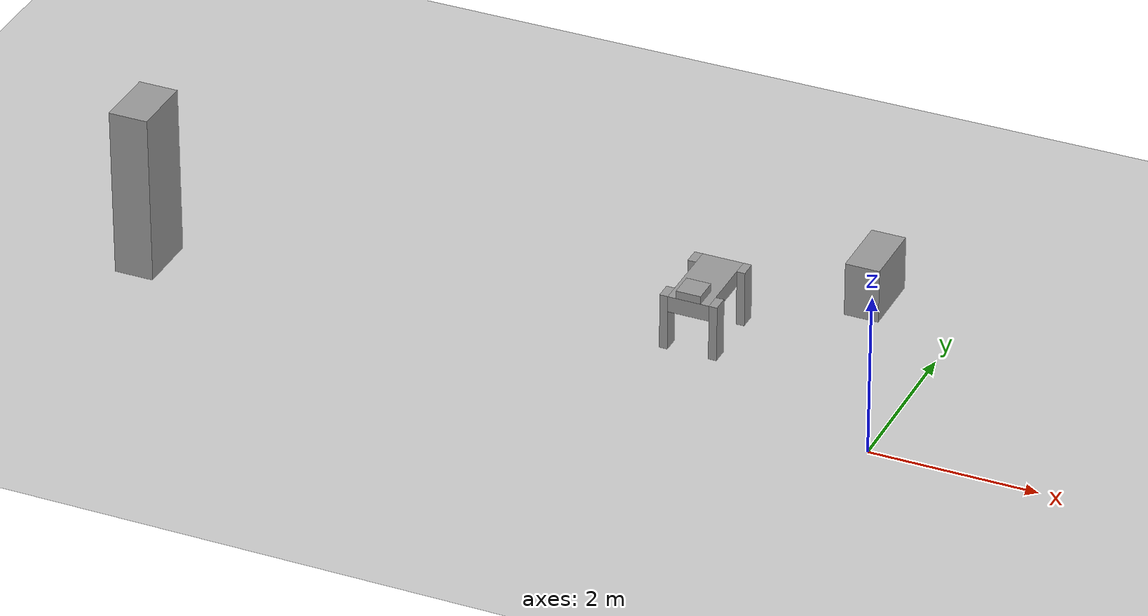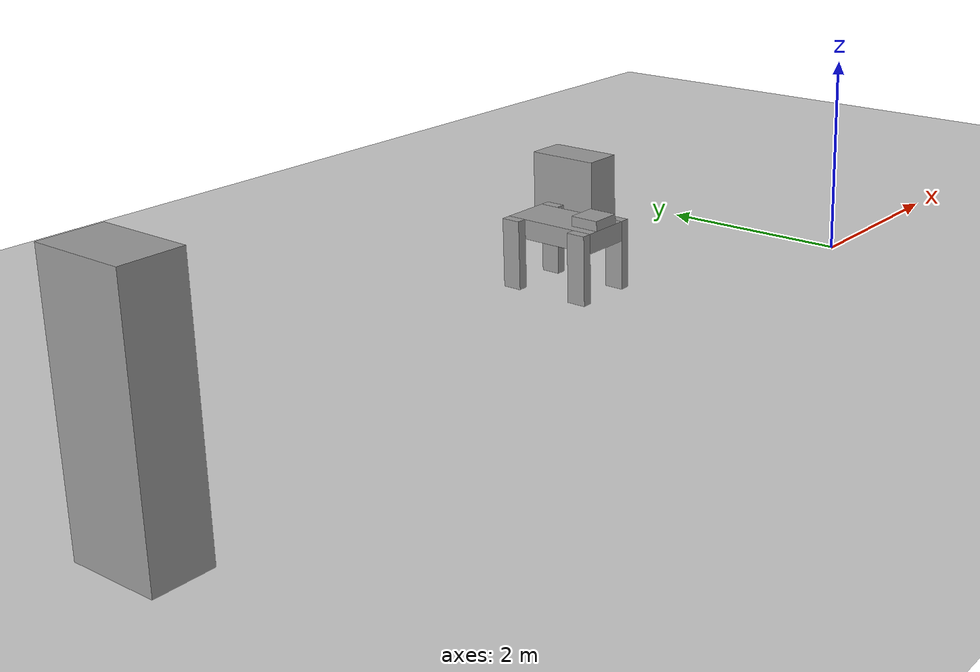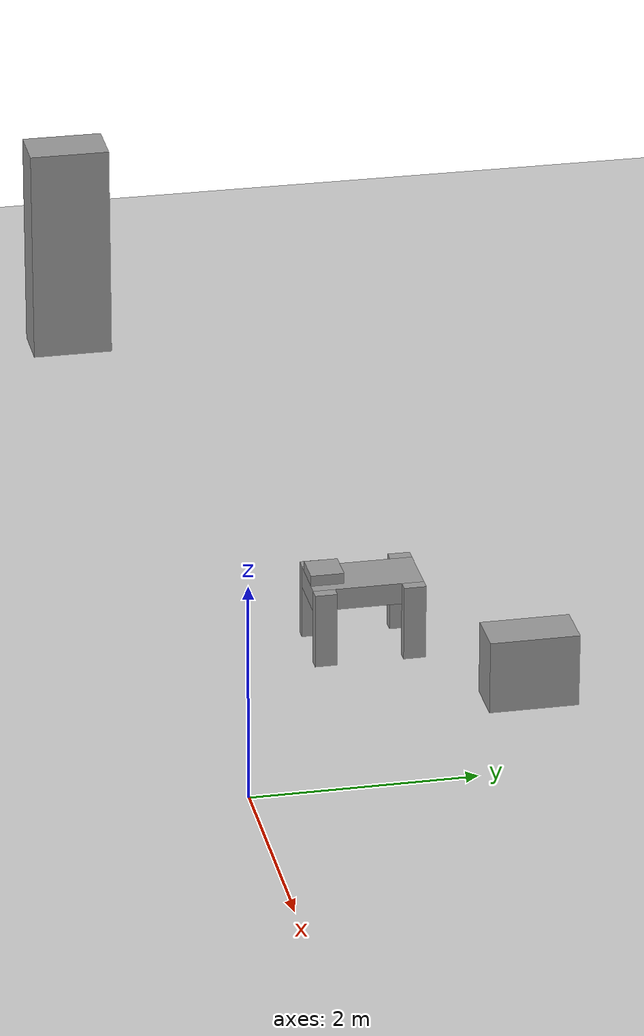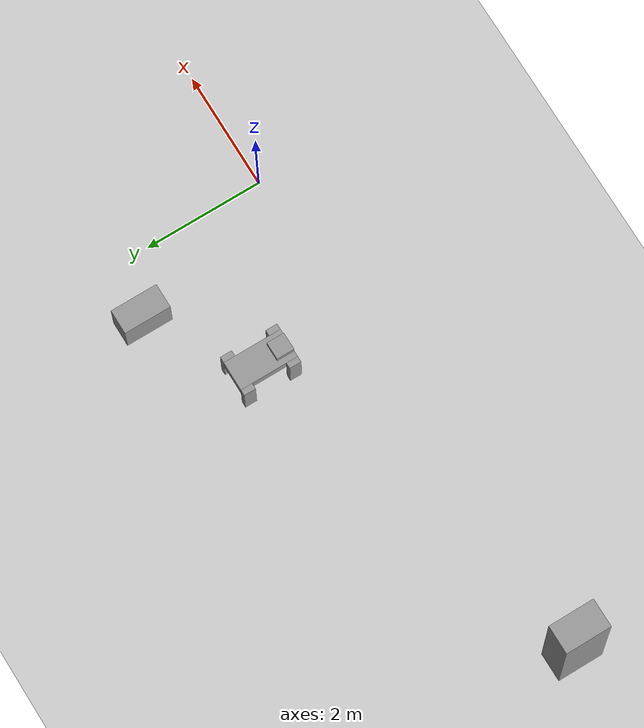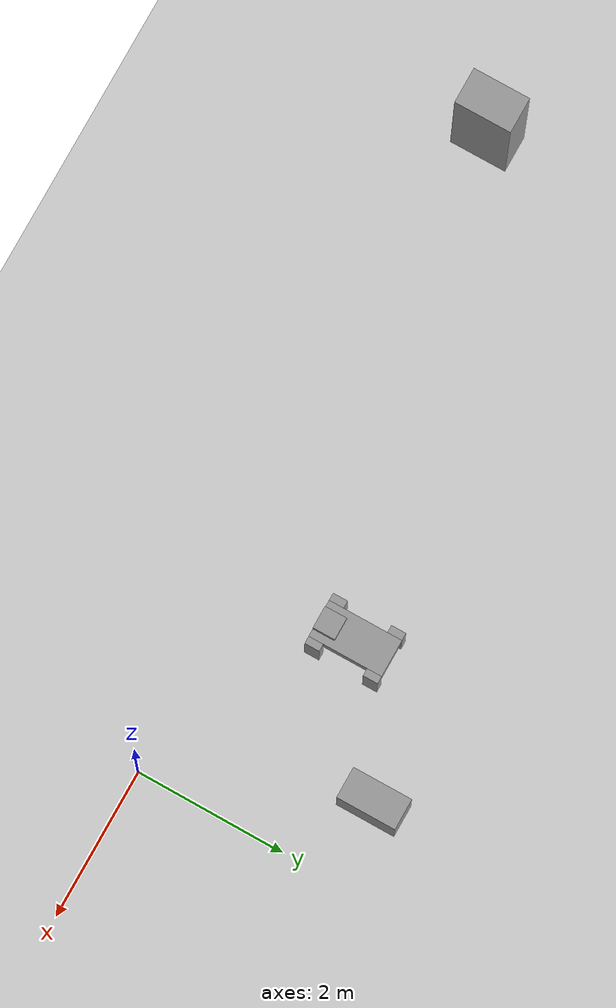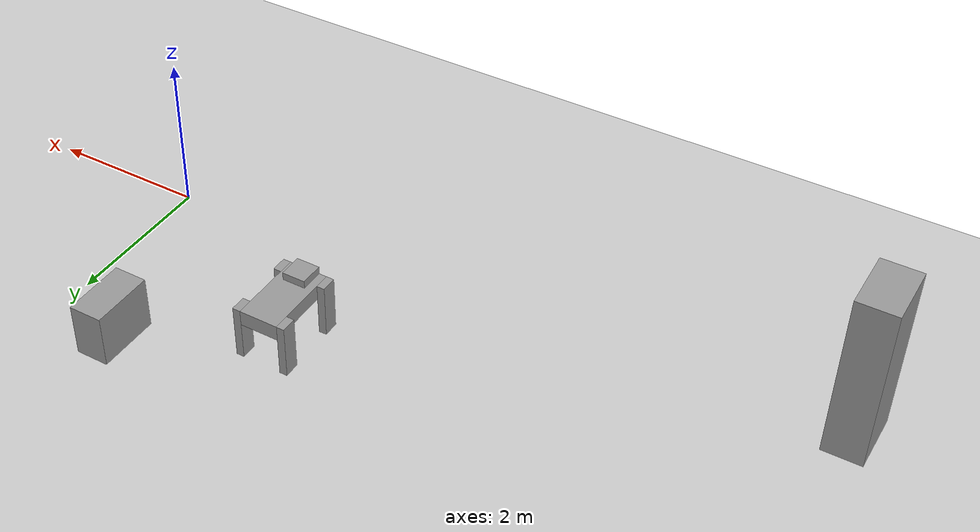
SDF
<sdf version="1.7">
 <world name="default">
  <model name="ground_plane">
   <static>1</static>
   <link name="link">
    <collision name="collision">
     <geometry><plane><normal>0 0 1</normal><size>100 100</size></plane></geometry>
     <surface>
      <contact><collide_bitmask>65535</collide_bitmask></contact>
      <friction><ode><mu>100</mu><mu2>50</mu2></ode></friction>
     </surface>
    </collision>
    <visual name="visual">
     <cast_shadows>0</cast_shadows>
     <geometry><plane><normal>0 0 1</normal><size>100 100</size></plane></geometry>
     <material>
      <script><uri>file://media/materials/scripts/gazebo.material</uri><name>Gazebo/Grey</name></script>
     </material>
    </visual>
   </link>
  </model>
  <model name="robot">
   <link name="link_1_clone">
    <inertial>
     <mass>1</mass>
     <inertia>
      <ixx>0.166667</ixx>
      <ixy>0</ixy>
      <ixz>0</ixz>
      <iyy>0.166667</iyy>
      <iyz>0</iyz>
      <izz>0.166667</izz>
     </inertia>
    </inertial>
    <pose>1e-06 0.058332 0.141667 0 -0 0</pose>
    <visual name="visual">
     <geometry><box><size>0.5 1 0.2</size></box></geometry>
     <material>
      <lighting>1</lighting>
      <script><uri>file://media/materials/scripts/gazebo.material</uri><name>Gazebo/Grey</name></script>
      <shader type="pixel"><normal_map>__default__</normal_map></shader>
      <ambient>0.3 0.3 0.3 1</ambient>
      <diffuse>0.7 0.7 0.7 1</diffuse>
      <specular>0.01 0.01 0.01 1</specular>
      <emissive>0 0 0 1</emissive>
     </material>
    </visual>
    <collision name="collision">
     <geometry><box><size>0.5 1 0.2</size></box></geometry>
     <surface>
      <friction>
       <ode><mu>1</mu><mu2>1</mu2><fdir1>0 0 0</fdir1><slip1>0</slip1><slip2>0</slip2></ode>
       <torsional>
        <coefficient>1</coefficient>
        <patch_radius>0</patch_radius>
        <surface_radius>0</surface_radius>
        <use_patch_radius>1</use_patch_radius>
        <ode><slip>0</slip></ode>
       </torsional>
      </friction>
      <bounce><restitution_coefficient>0</restitution_coefficient><threshold>1e+06</threshold></bounce>
      <contact>
       <collide_without_contact>0</collide_without_contact>
       <collide_without_contact_bitmask>1</collide_without_contact_bitmask>
       <collide_bitmask>1</collide_bitmask>
       <ode>
        <soft_cfm>0</soft_cfm>
        <soft_erp>0.2</soft_erp>
        <kp>1e+13</kp>
        <kd>1</kd>
        <max_vel>0.01</max_vel>
        <min_depth>0</min_depth>
       </ode>
       <bullet>
        <split_impulse>1</split_impulse>
        <split_impulse_penetration_threshold>-0.01</split_impulse_penetration_threshold>
        <soft_cfm>0</soft_cfm>
        <soft_erp>0.2</soft_erp>
        <kp>1e+13</kp>
        <kd>1</kd>
       </bullet>
      </contact>
     </surface>
    </collision>
   </link>
   <link name="link_3_clone">
    <inertial>
     <mass>1</mass>
     <inertia>
      <ixx>0.166667</ixx>
      <ixy>0</ixy>
      <ixz>0</ixz>
      <iyy>0.166667</iyy>
      <iyz>0</iyz>
      <izz>0.166667</izz>
     </inertia>
    </inertial>
    <pose>0.300001 0.458331 -0.108333 0 -0 0</pose>
    <visual name="visual">
     <geometry><box><size>0.1 0.2 0.7</size></box></geometry>
     <material>
      <lighting>1</lighting>
      <script><uri>file://media/materials/scripts/gazebo.material</uri><name>Gazebo/Grey</name></script>
      <shader type="pixel"><normal_map>__default__</normal_map></shader>
      <ambient>0.3 0.3 0.3 1</ambient>
      <diffuse>0.7 0.7 0.7 1</diffuse>
      <specular>0.01 0.01 0.01 1</specular>
      <emissive>0 0 0 1</emissive>
     </material>
    </visual>
    <collision name="collision">
     <geometry><box><size>0.1 0.2 0.7</size></box></geometry>
     <surface>
      <friction>
       <ode><mu>1</mu><mu2>1</mu2><fdir1>0 0 0</fdir1><slip1>0</slip1><slip2>0</slip2></ode>
       <torsional>
        <coefficient>1</coefficient>
        <patch_radius>0</patch_radius>
        <surface_radius>0</surface_radius>
        <use_patch_radius>1</use_patch_radius>
        <ode><slip>0</slip></ode>
       </torsional>
      </friction>
      <bounce><restitution_coefficient>0</restitution_coefficient><threshold>1e+06</threshold></bounce>
      <contact>
       <collide_without_contact>0</collide_without_contact>
       <collide_without_contact_bitmask>1</collide_without_contact_bitmask>
       <collide_bitmask>1</collide_bitmask>
       <ode>
        <soft_cfm>0</soft_cfm>
        <soft_erp>0.2</soft_erp>
        <kp>1e+13</kp>
        <kd>1</kd>
        <max_vel>0.01</max_vel>
        <min_depth>0</min_depth>
       </ode>
       <bullet>
        <split_impulse>1</split_impulse>
        <split_impulse_penetration_threshold>-0.01</split_impulse_penetration_threshold>
        <soft_cfm>0</soft_cfm>
        <soft_erp>0.2</soft_erp>
        <kp>1e+13</kp>
        <kd>1</kd>
       </bullet>
      </contact>
     </surface>
    </collision>
   </link>
   <link name="link_3_clone_clone">
    <inertial>
     <mass>1</mass>
     <inertia>
      <ixx>0.166667</ixx>
      <ixy>0</ixy>
      <ixz>0</ixz>
      <iyy>0.166667</iyy>
      <iyz>0</iyz>
      <izz>0.166667</izz>
     </inertia>
    </inertial>
    <pose>-0.299999 -0.341668 -0.108333 0 -0 0</pose>
    <visual name="visual">
     <geometry><box><size>0.1 0.2 0.7</size></box></geometry>
     <material>
      <lighting>1</lighting>
      <script><uri>file://media/materials/scripts/gazebo.material</uri><name>Gazebo/Grey</name></script>
      <shader type="pixel"><normal_map>__default__</normal_map></shader>
      <ambient>0.3 0.3 0.3 1</ambient>
      <diffuse>0.7 0.7 0.7 1</diffuse>
      <specular>0.01 0.01 0.01 1</specular>
      <emissive>0 0 0 1</emissive>
     </material>
    </visual>
    <collision name="collision">
     <geometry><box><size>0.1 0.2 0.7</size></box></geometry>
     <surface>
      <friction>
       <ode><mu>1</mu><mu2>1</mu2><fdir1>0 0 0</fdir1><slip1>0</slip1><slip2>0</slip2></ode>
       <torsional>
        <coefficient>1</coefficient>
        <patch_radius>0</patch_radius>
        <surface_radius>0</surface_radius>
        <use_patch_radius>1</use_patch_radius>
        <ode><slip>0</slip></ode>
       </torsional>
      </friction>
      <bounce><restitution_coefficient>0</restitution_coefficient><threshold>1e+06</threshold></bounce>
      <contact>
       <collide_without_contact>0</collide_without_contact>
       <collide_without_contact_bitmask>1</collide_without_contact_bitmask>
       <collide_bitmask>1</collide_bitmask>
       <ode>
        <soft_cfm>0</soft_cfm>
        <soft_erp>0.2</soft_erp>
        <kp>1e+13</kp>
        <kd>1</kd>
        <max_vel>0.01</max_vel>
        <min_depth>0</min_depth>
       </ode>
       <bullet>
        <split_impulse>1</split_impulse>
        <split_impulse_penetration_threshold>-0.01</split_impulse_penetration_threshold>
        <soft_cfm>0</soft_cfm>
        <soft_erp>0.2</soft_erp>
        <kp>1e+13</kp>
        <kd>1</kd>
       </bullet>
      </contact>
     </surface>
    </collision>
   </link>
   <link name="link_3_clone_clone_0">
    <inertial>
     <mass>1</mass>
     <inertia>
      <ixx>0.166667</ixx>
      <ixy>0</ixy>
      <ixz>0</ixz>
      <iyy>0.166667</iyy>
      <iyz>0</iyz>
      <izz>0.166667</izz>
     </inertia>
    </inertial>
    <pose>-0.299999 0.458331 -0.108333 0 -0 0</pose>
    <visual name="visual">
     <geometry><box><size>0.1 0.2 0.7</size></box></geometry>
     <material>
      <lighting>1</lighting>
      <script><uri>file://media/materials/scripts/gazebo.material</uri><name>Gazebo/Grey</name></script>
      <shader type="pixel"><normal_map>__default__</normal_map></shader>
      <ambient>0.3 0.3 0.3 1</ambient>
      <diffuse>0.7 0.7 0.7 1</diffuse>
      <specular>0.01 0.01 0.01 1</specular>
      <emissive>0 0 0 1</emissive>
     </material>
    </visual>
    <collision name="collision">
     <geometry><box><size>0.1 0.2 0.7</size></box></geometry>
     <surface>
      <friction>
       <ode><mu>1</mu><mu2>1</mu2><fdir1>0 0 0</fdir1><slip1>0</slip1><slip2>0</slip2></ode>
       <torsional>
        <coefficient>1</coefficient>
        <patch_radius>0</patch_radius>
        <surface_radius>0</surface_radius>
        <use_patch_radius>1</use_patch_radius>
        <ode><slip>0</slip></ode>
       </torsional>
      </friction>
      <bounce><restitution_coefficient>0</restitution_coefficient><threshold>1e+06</threshold></bounce>
      <contact>
       <collide_without_contact>0</collide_without_contact>
       <collide_without_contact_bitmask>1</collide_without_contact_bitmask>
       <collide_bitmask>1</collide_bitmask>
       <ode>
        <soft_cfm>0</soft_cfm>
        <soft_erp>0.2</soft_erp>
        <kp>1e+13</kp>
        <kd>1</kd>
        <max_vel>0.01</max_vel>
        <min_depth>0</min_depth>
       </ode>
       <bullet>
        <split_impulse>1</split_impulse>
        <split_impulse_penetration_threshold>-0.01</split_impulse_penetration_threshold>
        <soft_cfm>0</soft_cfm>
        <soft_erp>0.2</soft_erp>
        <kp>1e+13</kp>
        <kd>1</kd>
       </bullet>
      </contact>
     </surface>
    </collision>
   </link>
   <link name="link_3_clone_clone_1">
    <inertial>
     <mass>1</mass>
     <inertia>
      <ixx>0.166667</ixx>
      <ixy>0</ixy>
      <ixz>0</ixz>
      <iyy>0.166667</iyy>
      <iyz>0</iyz>
      <izz>0.166667</izz>
     </inertia>
    </inertial>
    <pose>0.300001 -0.341668 -0.108333 0 -0 0</pose>
    <visual name="visual">
     <geometry><box><size>0.1 0.2 0.7</size></box></geometry>
     <material>
      <lighting>1</lighting>
      <script><uri>file://media/materials/scripts/gazebo.material</uri><name>Gazebo/Grey</name></script>
      <shader type="pixel"><normal_map>__default__</normal_map></shader>
      <ambient>0.3 0.3 0.3 1</ambient>
      <diffuse>0.7 0.7 0.7 1</diffuse>
      <specular>0.01 0.01 0.01 1</specular>
      <emissive>0 0 0 1</emissive>
     </material>
    </visual>
    <collision name="collision">
     <geometry><box><size>0.1 0.2 0.7</size></box></geometry>
     <surface>
      <friction>
       <ode><mu>1</mu><mu2>1</mu2><fdir1>0 0 0</fdir1><slip1>0</slip1><slip2>0</slip2></ode>
       <torsional>
        <coefficient>1</coefficient>
        <patch_radius>0</patch_radius>
        <surface_radius>0</surface_radius>
        <use_patch_radius>1</use_patch_radius>
        <ode><slip>0</slip></ode>
       </torsional>
      </friction>
      <bounce><restitution_coefficient>0</restitution_coefficient><threshold>1e+06</threshold></bounce>
      <contact>
       <collide_without_contact>0</collide_without_contact>
       <collide_without_contact_bitmask>1</collide_without_contact_bitmask>
       <collide_bitmask>1</collide_bitmask>
       <ode>
        <soft_cfm>0</soft_cfm>
        <soft_erp>0.2</soft_erp>
        <kp>1e+13</kp>
        <kd>1</kd>
        <max_vel>0.01</max_vel>
        <min_depth>0</min_depth>
       </ode>
       <bullet>
        <split_impulse>1</split_impulse>
        <split_impulse_penetration_threshold>-0.01</split_impulse_penetration_threshold>
        <soft_cfm>0</soft_cfm>
        <soft_erp>0.2</soft_erp>
        <kp>1e+13</kp>
        <kd>1</kd>
       </bullet>
      </contact>
     </surface>
    </collision>
   </link>
   <link name="link_4_clone">
    <inertial>
     <mass>1</mass>
     <inertia>
      <ixx>0.166667</ixx>
      <ixy>0</ixy>
      <ixz>0</ixz>
      <iyy>0.166667</iyy>
      <iyz>0</iyz>
      <izz>0.166667</izz>
     </inertia>
    </inertial>
    <pose>1e-06 -0.291669 0.291667 0 -0 0</pose>
    <visual name="visual">
     <geometry><box><size>0.3 0.3 0.1</size></box></geometry>
     <material>
      <lighting>1</lighting>
      <script><uri>file://media/materials/scripts/gazebo.material</uri><name>Gazebo/Grey</name></script>
      <shader type="pixel"><normal_map>__default__</normal_map></shader>
      <ambient>0.3 0.3 0.3 1</ambient>
      <diffuse>0.7 0.7 0.7 1</diffuse>
      <specular>0.01 0.01 0.01 1</specular>
      <emissive>0 0 0 1</emissive>
     </material>
    </visual>
    <collision name="collision">
     <geometry><box><size>0.3 0.3 0.1</size></box></geometry>
     <surface>
      <friction>
       <ode><mu>1</mu><mu2>1</mu2><fdir1>0 0 0</fdir1><slip1>0</slip1><slip2>0</slip2></ode>
       <torsional>
        <coefficient>1</coefficient>
        <patch_radius>0</patch_radius>
        <surface_radius>0</surface_radius>
        <use_patch_radius>1</use_patch_radius>
        <ode><slip>0</slip></ode>
       </torsional>
      </friction>
      <bounce><restitution_coefficient>0</restitution_coefficient><threshold>1e+06</threshold></bounce>
      <contact>
       <collide_without_contact>0</collide_without_contact>
       <collide_without_contact_bitmask>1</collide_without_contact_bitmask>
       <collide_bitmask>1</collide_bitmask>
       <ode>
        <soft_cfm>0</soft_cfm>
        <soft_erp>0.2</soft_erp>
        <kp>1e+13</kp>
        <kd>1</kd>
        <max_vel>0.01</max_vel>
        <min_depth>0</min_depth>
       </ode>
       <bullet>
        <split_impulse>1</split_impulse>
        <split_impulse_penetration_threshold>-0.01</split_impulse_penetration_threshold>
        <soft_cfm>0</soft_cfm>
        <soft_erp>0.2</soft_erp>
        <kp>1e+13</kp>
        <kd>1</kd>
       </bullet>
      </contact>
     </surface>
    </collision>
   </link>
   <joint name="link_1_clone_JOINT_1" type="revolute">
    <parent>link_1_clone</parent>
    <child>link_3_clone_clone_1</child>
    <axis>
     <xyz>1 0 0</xyz>
     <limit>
      <lower>-1.79769e+308</lower>
      <upper>1.79769e+308</upper>
      <effort>-1</effort>
      <velocity>-1</velocity>
     </limit>
     <dynamics>
      <spring_reference>0</spring_reference>
      <spring_stiffness>0</spring_stiffness>
      <damping>0</damping>
     </dynamics>
    </axis>
    <physics>
     <ode><limit><cfm>0</cfm><erp>0.2</erp></limit><suspension><cfm>0</cfm><erp>0.2</erp></suspension></ode>
    </physics>
   </joint>
   <joint name="link_1_clone_JOINT_2" type="revolute">
    <parent>link_1_clone</parent>
    <child>link_3_clone_clone</child>
    <axis>
     <xyz>1 0 0</xyz>
     <limit>
      <lower>-1.79769e+308</lower>
      <upper>1.79769e+308</upper>
      <effort>-1</effort>
      <velocity>-1</velocity>
     </limit>
     <dynamics>
      <spring_reference>0</spring_reference>
      <spring_stiffness>0</spring_stiffness>
      <damping>0</damping>
     </dynamics>
    </axis>
    <physics>
     <ode><limit><cfm>0</cfm><erp>0.2</erp></limit><suspension><cfm>0</cfm><erp>0.2</erp></suspension></ode>
    </physics>
   </joint>
   <joint name="link_1_clone_JOINT_3" type="revolute">
    <parent>link_1_clone</parent>
    <child>link_3_clone_clone_0</child>
    <axis>
     <xyz>1 0 0</xyz>
     <limit>
      <lower>-1.79769e+308</lower>
      <upper>1.79769e+308</upper>
      <effort>-1</effort>
      <velocity>-1</velocity>
     </limit>
     <dynamics>
      <spring_reference>0</spring_reference>
      <spring_stiffness>0</spring_stiffness>
      <damping>0</damping>
     </dynamics>
    </axis>
    <physics>
     <ode><limit><cfm>0</cfm><erp>0.2</erp></limit><suspension><cfm>0</cfm><erp>0.2</erp></suspension></ode>
    </physics>
   </joint>
   <joint name="link_1_clone_JOINT_4" type="revolute">
    <parent>link_1_clone</parent>
    <child>link_3_clone</child>
    <axis>
     <xyz>1 0 0</xyz>
     <limit>
      <lower>-1.79769e+308</lower>
      <upper>1.79769e+308</upper>
      <effort>-1</effort>
      <velocity>-1</velocity>
     </limit>
     <dynamics>
      <spring_reference>0</spring_reference>
      <spring_stiffness>0</spring_stiffness>
      <damping>0</damping>
     </dynamics>
    </axis>
    <physics>
     <ode><limit><cfm>0</cfm><erp>0.2</erp></limit><suspension><cfm>0</cfm><erp>0.2</erp></suspension></ode>
    </physics>
   </joint>
   <joint name="link_1_clone_JOINT_5" type="revolute">
    <parent>link_1_clone</parent>
    <child>link_4_clone</child>
    <axis>
     <xyz>0 0 1</xyz>
     <limit>
      <lower>-1.79769e+308</lower>
      <upper>1.79769e+308</upper>
      <effort>-1</effort>
      <velocity>-1</velocity>
     </limit>
     <dynamics>
      <spring_reference>0</spring_reference>
      <spring_stiffness>0</spring_stiffness>
      <damping>0</damping>
     </dynamics>
    </axis>
    <physics>
     <ode><limit><cfm>0</cfm><erp>0.2</erp></limit><suspension><cfm>0</cfm><erp>0.2</erp></suspension></ode>
    </physics>
   </joint>
   <static>0</static>
   <pose>-2.60559 1.47237 0.458333 0 0 -0.000192</pose>
  </model>
  <model name="boxes">
   <link name="link_2">
    <inertial>
     <mass>0.222965</mass>
     <inertia>
      <ixx>0.0201884</ixx>
      <ixy>0</ixy>
      <ixz>0</ixz>
      <iyy>0.0116434</iyy>
      <iyz>0</iyz>
      <izz>0.0149799</izz>
     </inertia>
    </inertial>
    <pose>3.89733 1.38156 -0.43359 0 -0 0</pose>
    <visual name="visual">
     <geometry><box><size>0.41613 0.795647 0.673414</size></box></geometry>
     <material>
      <lighting>1</lighting>
      <script><uri>file://media/materials/scripts/gazebo.material</uri><name>Gazebo/Grey</name></script>
      <shader type="pixel"/>
     </material>
    </visual>
    <collision name="collision">
     <geometry><box><size>0.41613 0.795647 0.673414</size></box></geometry>
     <surface>
      <friction>
       <ode><mu>1</mu><mu2>1</mu2><fdir1>0 0 0</fdir1><slip1>0</slip1><slip2>0</slip2></ode>
       <torsional>
        <coefficient>1</coefficient>
        <patch_radius>0</patch_radius>
        <surface_radius>0</surface_radius>
        <use_patch_radius>1</use_patch_radius>
        <ode><slip>0</slip></ode>
       </torsional>
      </friction>
      <bounce><restitution_coefficient>0</restitution_coefficient><threshold>1e+06</threshold></bounce>
      <contact>
       <collide_without_contact>0</collide_without_contact>
       <collide_without_contact_bitmask>1</collide_without_contact_bitmask>
       <collide_bitmask>1</collide_bitmask>
       <ode>
        <soft_cfm>0</soft_cfm>
        <soft_erp>0.2</soft_erp>
        <kp>1e+13</kp>
        <kd>1</kd>
        <max_vel>0.01</max_vel>
        <min_depth>0</min_depth>
       </ode>
       <bullet>
        <split_impulse>1</split_impulse>
        <split_impulse_penetration_threshold>-0.01</split_impulse_penetration_threshold>
        <soft_cfm>0</soft_cfm>
        <soft_erp>0.2</soft_erp>
        <kp>1e+13</kp>
        <kd>1</kd>
       </bullet>
      </contact>
     </surface>
    </collision>
   </link>
   <link name="link_4">
    <inertial>
     <mass>0.756988</mass>
     <inertia>
      <ixx>0.312048</ixx>
      <ixy>0</ixy>
      <ixz>0</ixz>
      <iyy>0.28986</iyy>
      <iyz>0</iyz>
      <izz>0.0507926</izz>
     </inertia>
    </inertial>
    <pose>-3.89732 -1.38156 0.433587 0 -0 0</pose>
    <visual name="visual">
     <geometry><box><size>0.476153 0.760564 2.09003</size></box></geometry>
     <material>
      <lighting>1</lighting>
      <script><uri>file://media/materials/scripts/gazebo.material</uri><name>Gazebo/Grey</name></script>
      <shader type="pixel"/>
     </material>
    </visual>
    <collision name="collision">
     <geometry><box><size>0.476153 0.760564 2.09003</size></box></geometry>
     <surface>
      <friction>
       <ode><mu>1</mu><mu2>1</mu2><fdir1>0 0 0</fdir1><slip1>0</slip1><slip2>0</slip2></ode>
       <torsional>
        <coefficient>1</coefficient>
        <patch_radius>0</patch_radius>
        <surface_radius>0</surface_radius>
        <use_patch_radius>1</use_patch_radius>
        <ode><slip>0</slip></ode>
       </torsional>
      </friction>
      <bounce><restitution_coefficient>0</restitution_coefficient><threshold>1e+06</threshold></bounce>
      <contact>
       <collide_without_contact>0</collide_without_contact>
       <collide_without_contact_bitmask>1</collide_without_contact_bitmask>
       <collide_bitmask>1</collide_bitmask>
       <ode>
        <soft_cfm>0</soft_cfm>
        <soft_erp>0.2</soft_erp>
        <kp>1e+13</kp>
        <kd>1</kd>
        <max_vel>0.01</max_vel>
        <min_depth>0</min_depth>
       </ode>
       <bullet>
        <split_impulse>1</split_impulse>
        <split_impulse_penetration_threshold>-0.01</split_impulse_penetration_threshold>
        <soft_cfm>0</soft_cfm>
        <soft_erp>0.2</soft_erp>
        <kp>1e+13</kp>
        <kd>1</kd>
       </bullet>
      </contact>
     </surface>
    </collision>
   </link>
   <static>0</static>
   <pose>-4.91022 1.29329 0.93359 0 -0 0</pose>
  </model>
 </world>
</sdf>
